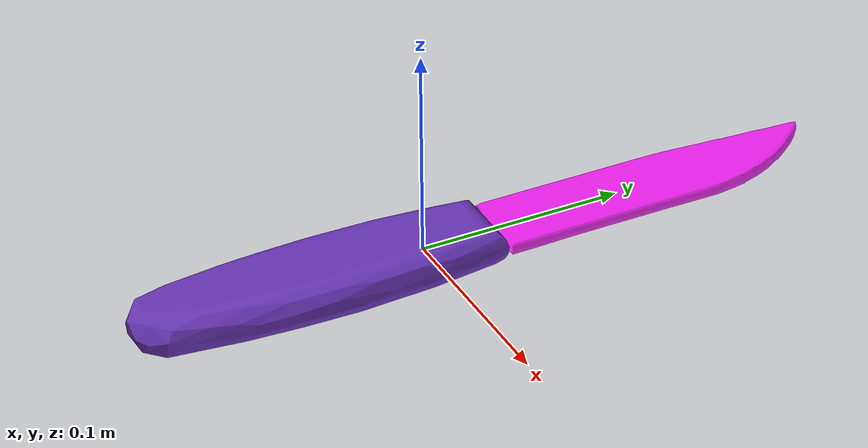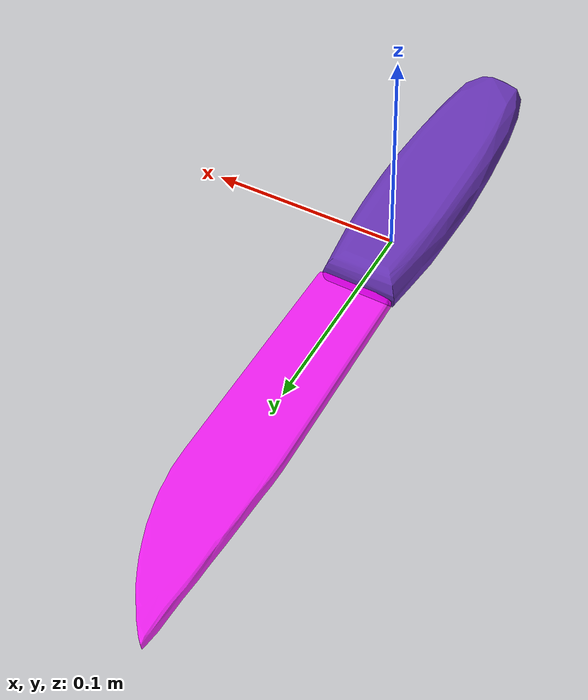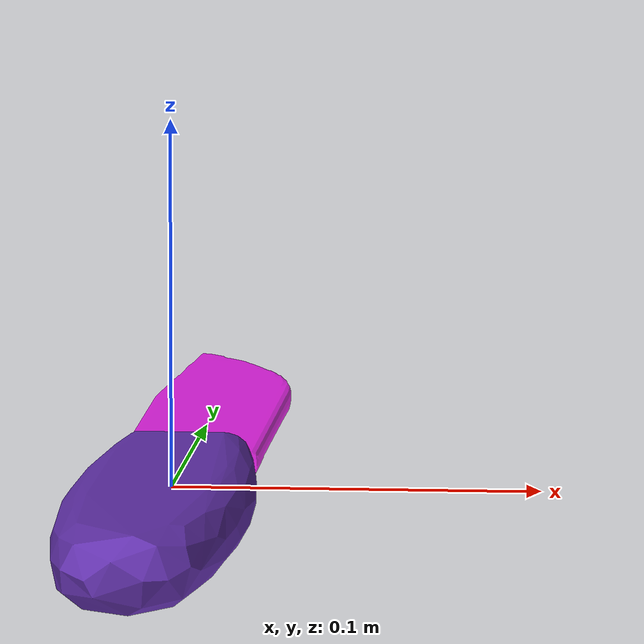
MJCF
<?xml version="1.0" encoding="utf-8"?>
<mujoco model="top_watertight_tiny">

  <default>

    <default group="2" type="mesh" contype="0" conaffinity="0">

      <geom group="2" type="mesh" contype="0" conaffinity="0"/>

    </default>

    <default group="3" type="mesh">

      <geom group="3" type="mesh"/>

    </default>

  </default>

  <asset>

    <mesh file="top_watertight_tiny.obj"/>

    <mesh file="top_watertight_tiny_collision_0.obj"/>

    <mesh file="bottom_watertight_tiny.obj"/>
    <mesh file="bottom_watertight_tiny_collision_0.obj"/>
    <mesh file="bottom_watertight_tiny_collision_1.obj"/>
    <mesh file="bottom_watertight_tiny_collision_2.obj"/>
    <mesh file="bottom_watertight_tiny_collision_3.obj"/>
  </asset>

  <worldbody>

    <body name="top_watertight_tiny">

      <freejoint/>

      <geom mesh="top_watertight_tiny" group="2" type="mesh" rgba="0.4 0.2 0.7 1" contype="0" conaffinity="0" solimp="0.90 0.95 0.001" solref="0.02 1.0" density="100" friction="0.95 0.4 0.3"/>

      <geom mesh="top_watertight_tiny_collision_0" rgba="0.03987860688636413 0.29047131024607076 0.5864105927071652 1" group="3" type="mesh" solimp="0.90 0.95 0.001" solref="0.02 1.0" density="100" friction="0.95 0.4 0.3"/>

      <body name="bottom_watertight_tiny">

        <geom mesh="bottom_watertight_tiny" group="2" type="mesh" rgba="1 0 1 0.8" contype="0" conaffinity="0" solimp="0.90 0.95 0.001" solref="0.02 1.0" density="100" friction="0.95 0.4 0.3"/>

        <geom mesh="bottom_watertight_tiny_collision_0" rgba="0.1521286200180153 0.7466263775365314 0.7131178922933773 1" group="3" type="mesh" solimp="0.90 0.95 0.001" solref="0.02 1.0" density="100" friction="0.95 0.4 0.3"/>

        <geom mesh="bottom_watertight_tiny_collision_1" rgba="0.7796992652864707 0.41851698196047227 0.8150922300966664 1" group="3" type="mesh" solimp="0.90 0.95 0.001" solref="0.02 1.0" density="100" friction="0.95 0.4 0.3"/>

        <geom mesh="bottom_watertight_tiny_collision_2" rgba="0.3564191470086906 0.8685764697413094 0.6023980152407363 1" group="3" type="mesh" solimp="0.90 0.95 0.001" solref="0.02 1.0" density="100" friction="0.95 0.4 0.3"/>

        <geom mesh="bottom_watertight_tiny_collision_3" rgba="0.6931312118174808 0.74864127794768 0.6886535405777334 1" group="3" type="mesh" solimp="0.90 0.95 0.001" solref="0.02 1.0" density="100" friction="0.95 0.4 0.3"/>

      </body>

    </body>

  </worldbody>

</mujoco>
